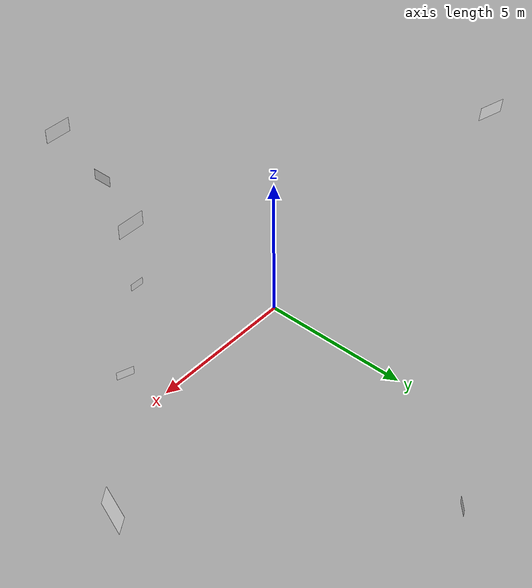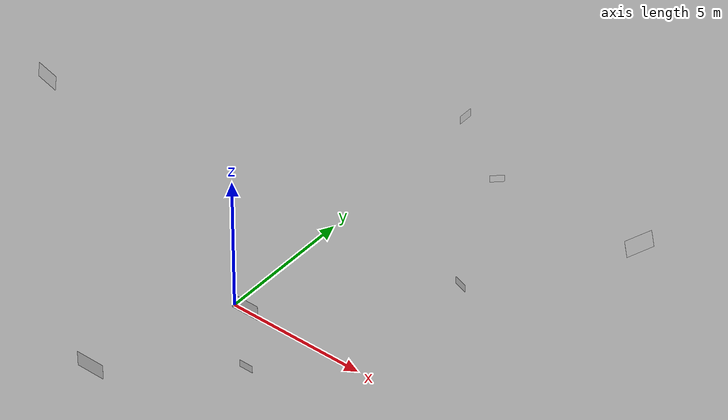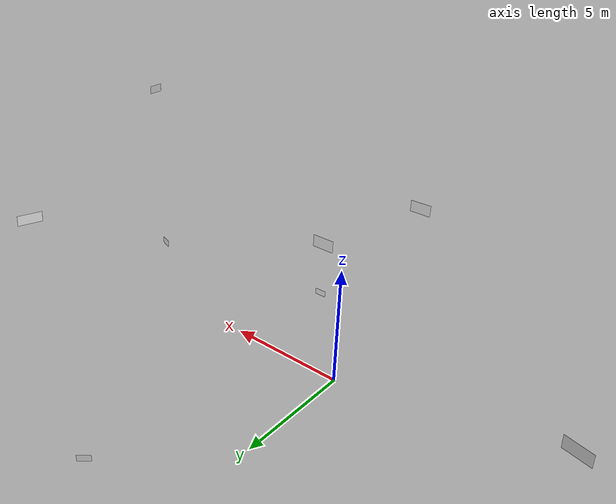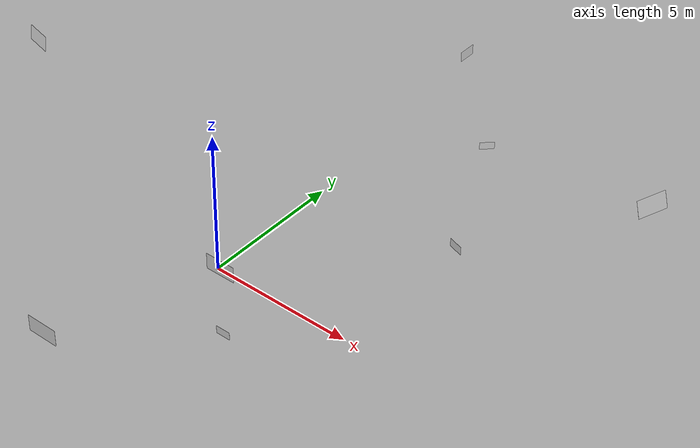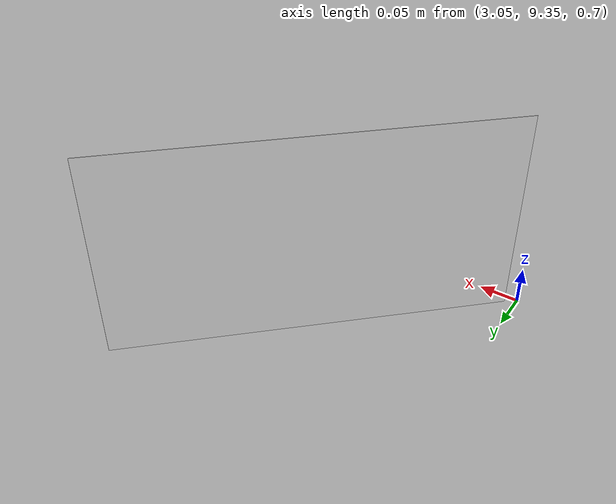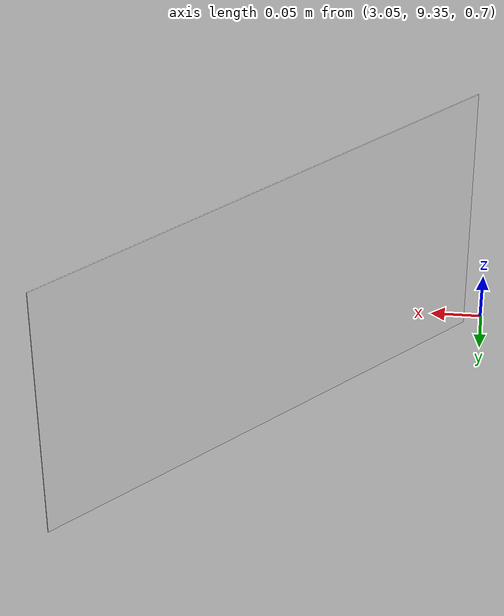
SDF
<sdf version="1.9">
 <world name="presentation">
  <physics name="1ms" type="ignored">
   <max_step_size>0.005</max_step_size>
   <real_time_factor>1.0</real_time_factor>
  </physics>
  <plugin filename="ignition-gazebo-physics-system" name="ignition::gazebo::systems::Physics"/>
  <plugin filename="ignition-gazebo-sensors-system" name="ignition::gazebo::systems::Sensors">
   <render_engine>ogre2</render_engine>
  </plugin>
  <plugin filename="ignition-gazebo-user-commands-system" name="ignition::gazebo::systems::UserCommands"/>
  <plugin filename="ignition-gazebo-scene-broadcaster-system" name="ignition::gazebo::systems::SceneBroadcaster"/>
  <scene><grid>false</grid><ambient>1 1 1</ambient></scene>
  <light type="directional" name="sun">
   <pose>0 0 10 0 0 0</pose>
   <diffuse>0.8 0.8 0.8 1</diffuse>
   <specular>0.2 0.2 0.2 1</specular>
   <attenuation>
    <range>1000</range>
    <constant>0.9</constant>
    <linear>0.01</linear>
    <quadratic>0.001</quadratic>
   </attenuation>
   <direction>0.0 0.5 -0.9</direction>
  </light>
  <model name="slide-0">
   <pose>11.69 5.21 4.8 -0.33 0 1.23</pose>
   <static>1</static>
   <link name="link">
    <pose>0 0 0.45 0 0 0</pose>
    <visual name="visual">
     <cast_shadows>0</cast_shadows>
     <geometry><box><size>1.0 0.001 0.54</size></box></geometry>
     <material>
      <diffuse>1 1 1 1</diffuse>
      <pbr>
       <metal>
        <albedo_map>model://srra_2021/slides/slide-0.png</albedo_map>
        <roughness>0</roughness>
        <metalness>0</metalness>
       </metal>
      </pbr>
     </material>
    </visual>
   </link>
  </model>
  <model name="slide-1">
   <pose>-9.4 1.64 3.19 -0.109 0 -0.24</pose>
   <static>1</static>
   <link name="link">
    <pose>0 0 0.45 0 0 0</pose>
    <visual name="visual">
     <cast_shadows>0</cast_shadows>
     <geometry><box><size>1.0 0.001 0.54</size></box></geometry>
     <material>
      <diffuse>1 1 1 1</diffuse>
      <pbr>
       <metal>
        <albedo_map>model://srra_2021/slides/slide-1.png</albedo_map>
        <roughness>0</roughness>
        <metalness>0</metalness>
       </metal>
      </pbr>
     </material>
    </visual>
   </link>
  </model>
  <model name="slide-2">
   <pose>3.08 -3.08 3.29 0 0 -3.14</pose>
   <static>1</static>
   <link name="link">
    <pose>0 0 0.45 0 0 0</pose>
    <visual name="visual">
     <cast_shadows>0</cast_shadows>
     <geometry><box><size>1.0 0.001 0.54</size></box></geometry>
     <material>
      <diffuse>1 1 1 1</diffuse>
      <pbr>
       <metal>
        <albedo_map>model://srra_2021/slides/slide-2.png</albedo_map>
        <roughness>0</roughness>
        <metalness>0</metalness>
       </metal>
      </pbr>
     </material>
    </visual>
   </link>
  </model>
  <model name="slide-3">
   <pose>1.46 -8.16 3.59 0 0 0</pose>
   <static>1</static>
   <link name="link">
    <pose>0 0 0.45 0 0 0</pose>
    <visual name="visual">
     <cast_shadows>0</cast_shadows>
     <geometry><box><size>1.0 0.001 0.54</size></box></geometry>
     <material>
      <diffuse>1 1 1 1</diffuse>
      <pbr>
       <metal>
        <albedo_map>model://srra_2021/slides/slide-3.png</albedo_map>
        <roughness>0</roughness>
        <metalness>0</metalness>
       </metal>
      </pbr>
     </material>
    </visual>
   </link>
  </model>
  <model name="slide-4">
   <pose>1.46 -8.16 3.59 0 0 0</pose>
   <static>1</static>
   <link name="link">
    <pose>0 0 0.45 0 0 0</pose>
    <visual name="visual">
     <cast_shadows>0</cast_shadows>
     <geometry><box><size>1.0 0.001 0.54</size></box></geometry>
     <material>
      <diffuse>1 1 1 1</diffuse>
      <pbr>
       <metal>
        <albedo_map>model://srra_2021/slides/slide-4.png</albedo_map>
        <roughness>0</roughness>
        <metalness>0</metalness>
       </metal>
      </pbr>
     </material>
    </visual>
   </link>
  </model>
  <model name="slide-5">
   <pose>7.7 1.52 3.6 0 0 2.81</pose>
   <static>1</static>
   <link name="link">
    <pose>0 0 0.45 0 0 0</pose>
    <visual name="visual">
     <cast_shadows>0</cast_shadows>
     <geometry><box><size>0.5 0.001 0.27</size></box></geometry>
     <material>
      <diffuse>1 1 1 1</diffuse>
      <pbr>
       <metal>
        <albedo_map>model://srra_2021/slides/slide-5.png</albedo_map>
        <roughness>0</roughness>
        <metalness>0</metalness>
       </metal>
      </pbr>
     </material>
    </visual>
   </link>
  </model>
  <model name="slide-6">
   <pose>3.248 9.52 0.375 0 0 -2.38</pose>
   <static>1</static>
   <link name="link">
    <pose>0 0 0.45 0 0 0</pose>
    <visual name="visual">
     <transparency>0.01</transparency>
     <cast_shadows>0</cast_shadows>
     <geometry><box><size>0.5 0.001 0.27</size></box></geometry>
     <material>
      <diffuse>1 1 1 1</diffuse>
      <pbr>
       <metal>
        <albedo_map>model://srra_2021/slides/slide-6.png</albedo_map>
        <roughness>0</roughness>
        <metalness>0</metalness>
       </metal>
      </pbr>
     </material>
    </visual>
   </link>
  </model>
  <model name="slide-7">
   <pose>3.248 9.52 0.375 0 0 -2.38</pose>
   <static>1</static>
   <link name="link">
    <pose>0 0 0.45 0 0 0</pose>
    <visual name="visual">
     <transparency>0.01</transparency>
     <cast_shadows>0</cast_shadows>
     <geometry><box><size>0.5 0.001 0.27</size></box></geometry>
     <material>
      <diffuse>1 1 1 1</diffuse>
      <pbr>
       <metal>
        <albedo_map>model://srra_2021/slides/slide-7.png</albedo_map>
        <roughness>0</roughness>
        <metalness>0</metalness>
       </metal>
      </pbr>
     </material>
    </visual>
   </link>
  </model>
  <model name="slide-8">
   <pose>3.248 9.52 0.375 0 0 -2.38</pose>
   <static>1</static>
   <link name="link">
    <pose>0 0 0.45 0 0 0</pose>
    <visual name="visual">
     <transparency>0.01</transparency>
     <cast_shadows>0</cast_shadows>
     <geometry><box><size>0.5 0.001 0.27</size></box></geometry>
     <material>
      <diffuse>1 1 1 1</diffuse>
      <pbr>
       <metal>
        <albedo_map>model://srra_2021/slides/slide-8.png</albedo_map>
        <roughness>0</roughness>
        <metalness>0</metalness>
       </metal>
      </pbr>
     </material>
    </visual>
   </link>
  </model>
  <model name="slide-9">
   <pose>3.248 9.52 0.375 0 0 -2.38</pose>
   <static>1</static>
   <link name="link">
    <pose>0 0 0.45 0 0 0</pose>
    <visual name="visual">
     <transparency>0.01</transparency>
     <cast_shadows>0</cast_shadows>
     <geometry><box><size>0.5 0.001 0.27</size></box></geometry>
     <material>
      <diffuse>1 1 1 1</diffuse>
      <pbr>
       <metal>
        <albedo_map>model://srra_2021/slides/slide-9.png</albedo_map>
        <roughness>0</roughness>
        <metalness>0</metalness>
       </metal>
      </pbr>
     </material>
    </visual>
   </link>
  </model>
  <model name="slide-10">
   <pose>3.248 9.52 0.375 0 0 -2.38</pose>
   <static>1</static>
   <link name="link">
    <pose>0 0 0.45 0 0 0</pose>
    <visual name="visual">
     <transparency>0.01</transparency>
     <cast_shadows>0</cast_shadows>
     <geometry><box><size>0.5 0.001 0.27</size></box></geometry>
     <material>
      <diffuse>1 1 1 1</diffuse>
      <pbr>
       <metal>
        <albedo_map>model://srra_2021/slides/slide-10.png</albedo_map>
        <roughness>0</roughness>
        <metalness>0</metalness>
       </metal>
      </pbr>
     </material>
    </visual>
   </link>
  </model>
  <model name="slide-11">
   <pose>3.248 9.52 0.375 0 0 -2.38</pose>
   <static>1</static>
   <link name="link">
    <pose>0 0 0.45 0 0 0</pose>
    <visual name="visual">
     <transparency>0.01</transparency>
     <cast_shadows>0</cast_shadows>
     <geometry><box><size>0.5 0.001 0.27</size></box></geometry>
     <material>
      <diffuse>1 1 1 1</diffuse>
      <pbr>
       <metal>
        <albedo_map>model://srra_2021/slides/slide-11.png</albedo_map>
        <roughness>0</roughness>
        <metalness>0</metalness>
       </metal>
      </pbr>
     </material>
    </visual>
   </link>
  </model>
  <model name="slide-12">
   <pose>3.248 9.52 0.375 0 0 -2.38</pose>
   <static>1</static>
   <link name="link">
    <pose>0 0 0.45 0 0 0</pose>
    <visual name="visual">
     <transparency>0.01</transparency>
     <cast_shadows>0</cast_shadows>
     <geometry><box><size>0.5 0.001 0.27</size></box></geometry>
     <material>
      <diffuse>1 1 1 1</diffuse>
      <pbr>
       <metal>
        <albedo_map>model://srra_2021/slides/slide-12.png</albedo_map>
        <roughness>0</roughness>
        <metalness>0</metalness>
       </metal>
      </pbr>
     </material>
    </visual>
   </link>
  </model>
  <model name="slide-13">
   <pose>3.248 9.52 0.375 0 0 -2.38</pose>
   <static>1</static>
   <link name="link">
    <pose>0 0 0.45 0 0 0</pose>
    <visual name="visual">
     <transparency>0.01</transparency>
     <cast_shadows>0</cast_shadows>
     <geometry><box><size>0.5 0.001 0.27</size></box></geometry>
     <material>
      <diffuse>1 1 1 1</diffuse>
      <pbr>
       <metal>
        <albedo_map>model://srra_2021/slides/slide-13.png</albedo_map>
        <roughness>0</roughness>
        <metalness>0</metalness>
       </metal>
      </pbr>
     </material>
    </visual>
   </link>
  </model>
  <model name="slide-14">
   <pose>3.248 9.52 0.375 0 0 -2.38</pose>
   <static>1</static>
   <link name="link">
    <pose>0 0 0.45 0 0 0</pose>
    <visual name="visual">
     <transparency>0.01</transparency>
     <cast_shadows>0</cast_shadows>
     <geometry><box><size>0.5 0.001 0.27</size></box></geometry>
     <material>
      <diffuse>1 1 1 1</diffuse>
      <pbr>
       <metal>
        <albedo_map>model://srra_2021/slides/slide-14.png</albedo_map>
        <roughness>0</roughness>
        <metalness>0</metalness>
       </metal>
      </pbr>
     </material>
    </visual>
   </link>
  </model>
  <model name="slide-15">
   <pose>3.248 9.52 0.375 0 0 -2.38</pose>
   <static>1</static>
   <link name="link">
    <pose>0 0 0.45 0 0 0</pose>
    <visual name="visual">
     <transparency>0.01</transparency>
     <cast_shadows>0</cast_shadows>
     <geometry><box><size>0.5 0.001 0.27</size></box></geometry>
     <material>
      <diffuse>1 1 1 1</diffuse>
      <pbr>
       <metal>
        <albedo_map>model://srra_2021/slides/slide-15.png</albedo_map>
        <roughness>0</roughness>
        <metalness>0</metalness>
       </metal>
      </pbr>
     </material>
    </visual>
   </link>
  </model>
  <model name="slide-16">
   <pose>3.248 9.52 0.375 0 0 -2.38</pose>
   <static>1</static>
   <link name="link">
    <pose>0 0 0.45 0 0 0</pose>
    <visual name="visual">
     <transparency>0.01</transparency>
     <cast_shadows>0</cast_shadows>
     <geometry><box><size>0.5 0.001 0.27</size></box></geometry>
     <material>
      <diffuse>1 1 1 1</diffuse>
      <pbr>
       <metal>
        <albedo_map>model://srra_2021/slides/slide-16.png</albedo_map>
        <roughness>0</roughness>
        <metalness>0</metalness>
       </metal>
      </pbr>
     </material>
    </visual>
   </link>
  </model>
  <model name="slide-17">
   <pose>3.248 9.52 0.375 0 0 -2.38</pose>
   <static>1</static>
   <link name="link">
    <pose>0 0 0.45 0 0 0</pose>
    <visual name="visual">
     <transparency>0.01</transparency>
     <cast_shadows>0</cast_shadows>
     <geometry><box><size>0.5 0.001 0.27</size></box></geometry>
     <material>
      <diffuse>1 1 1 1</diffuse>
      <pbr>
       <metal>
        <albedo_map>model://srra_2021/slides/slide-17.png</albedo_map>
        <roughness>0</roughness>
        <metalness>0</metalness>
       </metal>
      </pbr>
     </material>
    </visual>
   </link>
  </model>
  <model name="slide-18">
   <pose>3.248 9.52 0.375 0 0 -2.38</pose>
   <static>1</static>
   <link name="link">
    <pose>0 0 0.45 0 0 0</pose>
    <visual name="visual">
     <transparency>0.01</transparency>
     <cast_shadows>0</cast_shadows>
     <geometry><box><size>0.5 0.001 0.27</size></box></geometry>
     <material>
      <diffuse>1 1 1 1</diffuse>
      <pbr>
       <metal>
        <albedo_map>model://srra_2021/slides/slide-18.png</albedo_map>
        <roughness>0</roughness>
        <metalness>0</metalness>
       </metal>
      </pbr>
     </material>
    </visual>
   </link>
  </model>
  <model name="slide-19">
   <pose>3.248 9.52 0.375 0 0 -2.38</pose>
   <static>1</static>
   <link name="link">
    <pose>0 0 0.45 0 0 0</pose>
    <visual name="visual">
     <transparency>0.01</transparency>
     <cast_shadows>0</cast_shadows>
     <geometry><box><size>0.5 0.001 0.27</size></box></geometry>
     <material>
      <diffuse>1 1 1 1</diffuse>
      <pbr>
       <metal>
        <albedo_map>model://srra_2021/slides/slide-19.png</albedo_map>
        <roughness>0</roughness>
        <metalness>0</metalness>
       </metal>
      </pbr>
     </material>
    </visual>
   </link>
  </model>
  <model name="slide-20">
   <pose>3.248 9.52 0.375 0 0 -2.38</pose>
   <static>1</static>
   <link name="link">
    <pose>0 0 0.45 0 0 0</pose>
    <visual name="visual">
     <transparency>0.01</transparency>
     <cast_shadows>0</cast_shadows>
     <geometry><box><size>0.5 0.001 0.27</size></box></geometry>
     <material>
      <diffuse>1 1 1 1</diffuse>
      <pbr>
       <metal>
        <albedo_map>model://srra_2021/slides/slide-20.png</albedo_map>
        <roughness>0</roughness>
        <metalness>0</metalness>
       </metal>
      </pbr>
     </material>
    </visual>
   </link>
  </model>
  <model name="slide-21">
   <pose>3.248 9.52 0.375 0 0 -2.38</pose>
   <static>1</static>
   <link name="link">
    <pose>0 0 0.45 0 0 0</pose>
    <visual name="visual">
     <transparency>0.01</transparency>
     <cast_shadows>0</cast_shadows>
     <geometry><box><size>0.5 0.001 0.27</size></box></geometry>
     <material>
      <diffuse>1 1 1 1</diffuse>
      <pbr>
       <metal>
        <albedo_map>model://srra_2021/slides/slide-21.png</albedo_map>
        <roughness>0</roughness>
        <metalness>0</metalness>
       </metal>
      </pbr>
     </material>
    </visual>
   </link>
  </model>
  <model name="slide-22">
   <pose>3.248 9.52 0.375 0 0 -2.38</pose>
   <static>1</static>
   <link name="link">
    <pose>0 0 0.45 0 0 0</pose>
    <visual name="visual">
     <transparency>0.01</transparency>
     <cast_shadows>0</cast_shadows>
     <geometry><box><size>0.5 0.001 0.27</size></box></geometry>
     <material>
      <diffuse>1 1 1 1</diffuse>
      <pbr>
       <metal>
        <albedo_map>model://srra_2021/slides/slide-22.png</albedo_map>
        <roughness>0</roughness>
        <metalness>0</metalness>
       </metal>
      </pbr>
     </material>
    </visual>
   </link>
  </model>
  <model name="slide-23">
   <pose>3.248 9.52 0.375 0 0 -2.38</pose>
   <static>1</static>
   <link name="link">
    <pose>0 0 0.45 0 0 0</pose>
    <visual name="visual">
     <transparency>0.01</transparency>
     <cast_shadows>0</cast_shadows>
     <geometry><box><size>0.5 0.001 0.27</size></box></geometry>
     <material>
      <diffuse>1 1 1 1</diffuse>
      <pbr>
       <metal>
        <albedo_map>model://srra_2021/slides/slide-23.png</albedo_map>
        <roughness>0</roughness>
        <metalness>0</metalness>
       </metal>
      </pbr>
     </material>
    </visual>
   </link>
  </model>
  <model name="slide-24">
   <pose>7.7 1.52 10 0.04 0 -1.57</pose>
   <static>1</static>
   <link name="link">
    <pose>0 0 0.45 0 0 0</pose>
    <visual name="visual">
     <transparency>0.01</transparency>
     <cast_shadows>0</cast_shadows>
     <geometry><box><size>0.5 0.001 0.27</size></box></geometry>
     <material>
      <diffuse>1 1 1 1</diffuse>
      <pbr>
       <metal>
        <albedo_map>model://srra_2021/slides/slide-24.png</albedo_map>
        <roughness>0</roughness>
        <metalness>0</metalness>
       </metal>
      </pbr>
     </material>
    </visual>
   </link>
  </model>
  <model name="slide-25">
   <pose>3.08 -3.08 0.87 0 0 -3.14</pose>
   <static>1</static>
   <link name="link">
    <pose>0 0 0.45 0 0 0</pose>
    <visual name="visual">
     <transparency>0.01</transparency>
     <cast_shadows>0</cast_shadows>
     <geometry><box><size>0.5 0.001 0.27</size></box></geometry>
     <material>
      <diffuse>1 1 1 1</diffuse>
      <pbr>
       <metal>
        <albedo_map>model://srra_2021/slides/slide-25.png</albedo_map>
        <roughness>0</roughness>
        <metalness>0</metalness>
       </metal>
      </pbr>
     </material>
    </visual>
   </link>
  </model>
  <model name="slide-26">
   <pose>3.08 -3.08 0.87 0 0 -3.14</pose>
   <static>1</static>
   <link name="link">
    <pose>0 0 0.45 0 0 0</pose>
    <visual name="visual">
     <transparency>0.01</transparency>
     <cast_shadows>0</cast_shadows>
     <geometry><box><size>0.5 0.001 0.27</size></box></geometry>
     <material>
      <diffuse>1 1 1 1</diffuse>
      <pbr>
       <metal>
        <albedo_map>model://srra_2021/slides/slide-26.png</albedo_map>
        <roughness>0</roughness>
        <metalness>0</metalness>
       </metal>
      </pbr>
     </material>
    </visual>
   </link>
  </model>
  <model name="slide-27">
   <pose>3.08 -3.08 0.87 0 0 -3.14</pose>
   <static>1</static>
   <link name="link">
    <pose>0 0 0.45 0 0 0</pose>
    <visual name="visual">
     <transparency>0.01</transparency>
     <cast_shadows>0</cast_shadows>
     <geometry><box><size>0.5 0.001 0.27</size></box></geometry>
     <material>
      <diffuse>1 1 1 1</diffuse>
      <pbr>
       <metal>
        <albedo_map>model://srra_2021/slides/slide-27.png</albedo_map>
        <roughness>0</roughness>
        <metalness>0</metalness>
       </metal>
      </pbr>
     </material>
    </visual>
   </link>
  </model>
  <model name="slide-28">
   <pose>3.08 -3.08 0.87 0 0 -3.14</pose>
   <static>1</static>
   <link name="link">
    <pose>0 0 0.45 0 0 0</pose>
    <visual name="visual">
     <transparency>0.01</transparency>
     <cast_shadows>0</cast_shadows>
     <geometry><box><size>0.5 0.001 0.27</size></box></geometry>
     <material>
      <diffuse>1 1 1 1</diffuse>
      <pbr>
       <metal>
        <albedo_map>model://srra_2021/slides/slide-28.png</albedo_map>
        <roughness>0</roughness>
        <metalness>0</metalness>
       </metal>
      </pbr>
     </material>
    </visual>
   </link>
  </model>
  <model name="slide-29">
   <pose>3.08 -3.08 0.87 0 0 -3.14</pose>
   <static>1</static>
   <link name="link">
    <pose>0 0 0.45 0 0 0</pose>
    <visual name="visual">
     <transparency>0.01</transparency>
     <cast_shadows>0</cast_shadows>
     <geometry><box><size>0.5 0.001 0.27</size></box></geometry>
     <material>
      <diffuse>1 1 1 1</diffuse>
      <pbr>
       <metal>
        <albedo_map>model://srra_2021/slides/slide-29.png</albedo_map>
        <roughness>0</roughness>
        <metalness>0</metalness>
       </metal>
      </pbr>
     </material>
    </visual>
   </link>
  </model>
  <model name="slide-30">
   <pose>3.08 -3.08 0.87 0 0 -3.14</pose>
   <static>1</static>
   <link name="link">
    <pose>0 0 0.45 0 0 0</pose>
    <visual name="visual">
     <transparency>0.01</transparency>
     <cast_shadows>0</cast_shadows>
     <geometry><box><size>0.5 0.001 0.27</size></box></geometry>
     <material>
      <diffuse>1 1 1 1</diffuse>
      <pbr>
       <metal>
        <albedo_map>model://srra_2021/slides/slide-30.png</albedo_map>
        <roughness>0</roughness>
        <metalness>0</metalness>
       </metal>
      </pbr>
     </material>
    </visual>
   </link>
  </model>
  <model name="slide-31">
   <pose>3.08 -3.08 0.87 0 0 -3.14</pose>
   <static>1</static>
   <link name="link">
    <pose>0 0 0.45 0 0 0</pose>
    <visual name="visual">
     <transparency>0.01</transparency>
     <cast_shadows>0</cast_shadows>
     <geometry><box><size>0.5 0.001 0.27</size></box></geometry>
     <material>
      <diffuse>1 1 1 1</diffuse>
      <pbr>
       <metal>
        <albedo_map>model://srra_2021/slides/slide-31.png</albedo_map>
        <roughness>0</roughness>
        <metalness>0</metalness>
       </metal>
      </pbr>
     </material>
    </visual>
   </link>
  </model>
  <model name="slide-32">
   <pose>3.08 -3.08 0.87 0 0 -3.14</pose>
   <static>1</static>
   <link name="link">
    <pose>0 0 0.45 0 0 0</pose>
    <visual name="visual">
     <transparency>0.01</transparency>
     <cast_shadows>0</cast_shadows>
     <geometry><box><size>0.5 0.001 0.27</size></box></geometry>
     <material>
      <diffuse>1 1 1 1</diffuse>
      <pbr>
       <metal>
        <albedo_map>model://srra_2021/slides/slide-32.png</albedo_map>
        <roughness>0</roughness>
        <metalness>0</metalness>
       </metal>
      </pbr>
     </material>
    </visual>
   </link>
  </model>
  <model name="slide-33">
   <pose>3.08 -3.08 0.87 0 0 -3.14</pose>
   <static>1</static>
   <link name="link">
    <pose>0 0 0.45 0 0 0</pose>
    <visual name="visual">
     <transparency>0.01</transparency>
     <cast_shadows>0</cast_shadows>
     <geometry><box><size>0.5 0.001 0.27</size></box></geometry>
     <material>
      <diffuse>1 1 1 1</diffuse>
      <pbr>
       <metal>
        <albedo_map>model://srra_2021/slides/slide-33.png</albedo_map>
        <roughness>0</roughness>
        <metalness>0</metalness>
       </metal>
      </pbr>
     </material>
    </visual>
   </link>
  </model>
  <model name="slide-34">
   <pose>3.08 -3.08 0.87 0 0 -3.14</pose>
   <static>1</static>
   <link name="link">
    <pose>0 0 0.45 0 0 0</pose>
    <visual name="visual">
     <transparency>0.01</transparency>
     <cast_shadows>0</cast_shadows>
     <geometry><box><size>0.5 0.001 0.27</size></box></geometry>
     <material>
      <diffuse>1 1 1 1</diffuse>
      <pbr>
       <metal>
        <albedo_map>model://srra_2021/slides/slide-34.png</albedo_map>
        <roughness>0</roughness>
        <metalness>0</metalness>
       </metal>
      </pbr>
     </material>
    </visual>
   </link>
  </model>
  <model name="slide-35">
   <pose>3.08 -3.08 0.87 0 0 -3.14</pose>
   <static>1</static>
   <link name="link">
    <pose>0 0 0.45 0 0 0</pose>
    <visual name="visual">
     <transparency>0.01</transparency>
     <cast_shadows>0</cast_shadows>
     <geometry><box><size>0.5 0.001 0.27</size></box></geometry>
     <material>
      <diffuse>1 1 1 1</diffuse>
      <pbr>
       <metal>
        <albedo_map>model://srra_2021/slides/slide-35.png</albedo_map>
        <roughness>0</roughness>
        <metalness>0</metalness>
       </metal>
      </pbr>
     </material>
    </visual>
   </link>
  </model>
  <model name="slide-36">
   <pose>3.08 -3.08 0.87 0 0 -3.14</pose>
   <static>1</static>
   <link name="link">
    <pose>0 0 0.45 0 0 0</pose>
    <visual name="visual">
     <transparency>0.01</transparency>
     <cast_shadows>0</cast_shadows>
     <geometry><box><size>0.5 0.001 0.27</size></box></geometry>
     <material>
      <diffuse>1 1 1 1</diffuse>
      <pbr>
       <metal>
        <albedo_map>model://srra_2021/slides/slide-36.png</albedo_map>
        <roughness>0</roughness>
        <metalness>0</metalness>
       </metal>
      </pbr>
     </material>
    </visual>
   </link>
  </model>
  <model name="slide-37">
   <pose>3.08 -3.08 0.87 0 0 -3.14</pose>
   <static>1</static>
   <link name="link">
    <pose>0 0 0.45 0 0 0</pose>
    <visual name="visual">
     <transparency>0.01</transparency>
     <cast_shadows>0</cast_shadows>
     <geometry><box><size>0.5 0.001 0.27</size></box></geometry>
     <material>
      <diffuse>1 1 1 1</diffuse>
      <pbr>
       <metal>
        <albedo_map>model://srra_2021/slides/slide-37.png</albedo_map>
        <roughness>0</roughness>
        <metalness>0</metalness>
       </metal>
      </pbr>
     </material>
    </visual>
   </link>
  </model>
  <model name="slide-38">
   <pose>3.08 -3.08 0.87 0 0 -3.14</pose>
   <static>1</static>
   <link name="link">
    <pose>0 0 0.45 0 0 0</pose>
    <visual name="visual">
     <transparency>0.01</transparency>
     <cast_shadows>0</cast_shadows>
     <geometry><box><size>0.5 0.001 0.27</size></box></geometry>
     <material>
      <diffuse>1 1 1 1</diffuse>
      <pbr>
       <metal>
        <albedo_map>model://srra_2021/slides/slide-38.png</albedo_map>
        <roughness>0</roughness>
        <metalness>0</metalness>
       </metal>
      </pbr>
     </material>
    </visual>
   </link>
  </model>
 </world>
</sdf>
